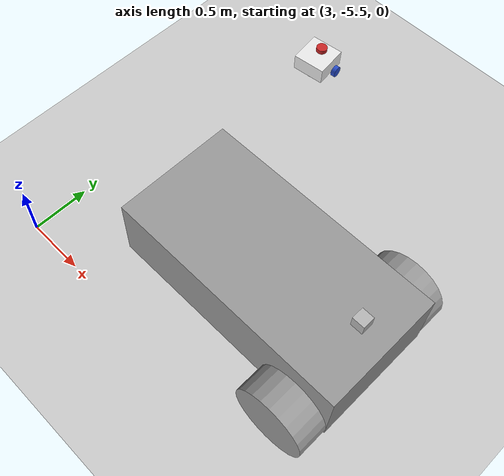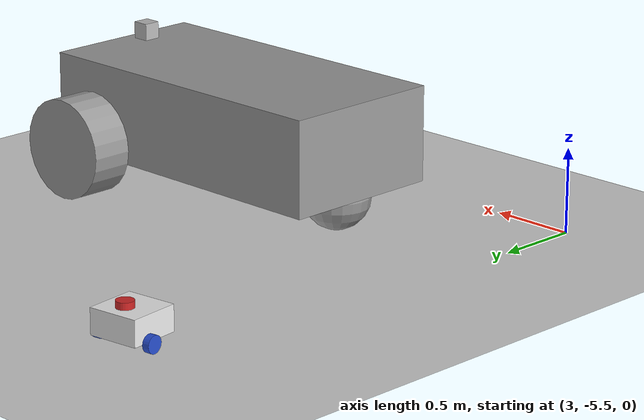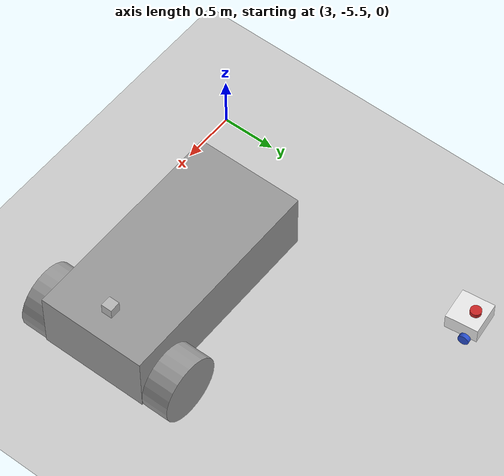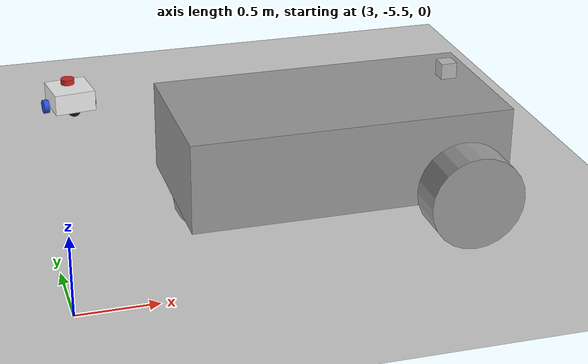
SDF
<sdf version="1.7">
 <world name="default">
  <light name="sun" type="directional">
   <pose>0 0 10 0 -0 0</pose>
   <diffuse>0.8 0.8 0.8 1</diffuse>
   <specular>0.2 0.2 0.2 1</specular>
   <attenuation>
    <range>1000</range>
    <constant>0.9</constant>
    <linear>0.01</linear>
    <quadratic>0.001</quadratic>
   </attenuation>
   <direction>-0.5 0.1 -0.9</direction>
   <spot><inner_angle>0</inner_angle><outer_angle>0</outer_angle><falloff>0</falloff></spot>
  </light>
  <model name="ground_plane">
   <static>1</static>
   <link name="link">
    <collision name="collision">
     <geometry><plane><normal>0 0 1</normal><size>100 100</size></plane></geometry>
     <surface>
      <contact><collide_bitmask>65535</collide_bitmask></contact>
      <friction><ode><mu>100</mu><mu2>50</mu2></ode></friction>
     </surface>
    </collision>
    <visual name="visual">
     <cast_shadows>0</cast_shadows>
     <geometry><plane><normal>0 0 1</normal><size>100 100</size></plane></geometry>
     <material>
      <script><uri>file://media/materials/scripts/gazebo.material</uri><name>Gazebo/Grey</name></script>
     </material>
    </visual>
   </link>
  </model>
  <gravity>0 0 -9.8</gravity>
  <magnetic_field>6e-06 2.3e-05 -4.2e-05</magnetic_field>
  <atmosphere type="adiabatic"/>
  <physics type="ode">
   <max_step_size>0.001</max_step_size>
   <real_time_factor>1</real_time_factor>
   <real_time_update_rate>1000</real_time_update_rate>
  </physics>
  <scene><ambient>0.4 0.4 0.4 1</ambient><background>0.7 0.7 0.7 1</background><shadows>1</shadows></scene>
  <spherical_coordinates>
   <surface_model>EARTH_WGS84</surface_model>
   <latitude_deg>0</latitude_deg>
   <longitude_deg>0</longitude_deg>
   <elevation>0</elevation>
   <heading_deg>0</heading_deg>
  </spherical_coordinates>
  <model name="my_bot">
   <link name="base_link">
    <inertial>
     <pose>0.055714 0 0.078571 0 -0 0</pose>
     <mass>0.7</mass>
     <inertia>
      <ixx>0.0064169</ixx>
      <ixy>0</ixy>
      <ixz>0.00118929</ixz>
      <iyy>0.00745405</iyy>
      <iyz>0</iyz>
      <izz>0.00876214</izz>
     </inertia>
    </inertial>
    <collision name="base_link_fixed_joint_lump__chassis_collision">
     <pose>0.05 0 0.075 0 -0 0</pose>
     <geometry><box><size>0.3 0.3 0.15</size></box></geometry>
    </collision>
    <collision name="base_link_fixed_joint_lump__caster_wheel_collision_1">
     <pose>0.14 0 0 0 -0 0</pose>
     <geometry><sphere><radius>0.05</radius></sphere></geometry>
     <surface><friction><ode><mu>0.001</mu><mu2>0.002</mu2></ode></friction></surface>
    </collision>
    <collision name="base_link_fixed_joint_lump__laser_frame_collision_2">
     <pose>0 0 0.175 0 -0 0</pose>
     <geometry><cylinder><length>0.04</length><radius>0.05</radius></cylinder></geometry>
    </collision>
    <visual name="base_link_fixed_joint_lump__chassis_visual">
     <pose>0.05 0 0.075 0 -0 0</pose>
     <geometry><box><size>0.3 0.3 0.15</size></box></geometry>
     <material>
      <script><name>Gazebo/White</name><uri>file://media/materials/scripts/gazebo.material</uri></script>
     </material>
    </visual>
    <visual name="base_link_fixed_joint_lump__caster_wheel_visual_1">
     <pose>0.14 0 0 0 -0 0</pose>
     <geometry><sphere><radius>0.05</radius></sphere></geometry>
     <material>
      <script><name>Gazebo/Black</name><uri>file://media/materials/scripts/gazebo.material</uri></script>
     </material>
    </visual>
    <visual name="base_link_fixed_joint_lump__laser_frame_visual_2">
     <pose>0 0 0.175 0 -0 0</pose>
     <geometry><cylinder><length>0.04</length><radius>0.05</radius></cylinder></geometry>
     <material>
      <script><name>Gazebo/Red</name><uri>file://media/materials/scripts/gazebo.material</uri></script>
     </material>
    </visual>
    <sensor name="laser" type="ray">
     <visualize>1</visualize>
     <update_rate>10</update_rate>
     <ray>
      <scan>
       <horizontal>
        <samples>360</samples>
        <min_angle>-3.14</min_angle>
        <max_angle>3.14</max_angle>
        <resolution>1</resolution>
       </horizontal>
       <vertical><samples>1</samples><min_angle>0</min_angle><max_angle>0</max_angle></vertical>
      </scan>
      <range><min>0.3</min><max>12</max></range>
     </ray>
     <plugin name="laser_controller" filename="libgazebo_ros_ray_sensor.so">
      <ros><argument>~/out:=scan</argument></ros>
      <output_type>sensor_msgs/LaserScan</output_type>
      <frame_name>laser_frame</frame_name>
     </plugin>
     <pose>0 0 0.175 0 -0 0</pose>
    </sensor>
   </link>
   <joint name="left_wheel_joint" type="revolute">
    <pose relative_to="base_link">0 0.175 0 -1.5708 0 0</pose>
    <parent>base_link</parent>
    <child>left_wheel</child>
    <axis>
     <xyz>0 0 1</xyz>
     <limit><lower>-1e+16</lower><upper>1e+16</upper></limit>
     <dynamics><spring_reference>0</spring_reference><spring_stiffness>0</spring_stiffness></dynamics>
    </axis>
   </joint>
   <link name="left_wheel">
    <pose relative_to="left_wheel_joint">0 0 0 0 -0 0</pose>
    <inertial>
     <mass>0.1</mass>
     <inertia>
      <ixx>7.58333e-05</ixx>
      <ixy>0</ixy>
      <ixz>0</ixz>
      <iyy>7.58333e-05</iyy>
      <iyz>0</iyz>
      <izz>0.000125</izz>
     </inertia>
    </inertial>
    <collision name="left_wheel_collision">
     <geometry><cylinder><length>0.04</length><radius>0.05</radius></cylinder></geometry>
    </collision>
    <visual name="left_wheel_visual">
     <geometry><cylinder><length>0.04</length><radius>0.05</radius></cylinder></geometry>
     <material>
      <script><name>Gazebo/Blue</name><uri>file://media/materials/scripts/gazebo.material</uri></script>
     </material>
    </visual>
   </link>
   <joint name="right_wheel_joint" type="revolute">
    <pose relative_to="base_link">0 -0.175 0 1.5708 -0 0</pose>
    <parent>base_link</parent>
    <child>right_wheel</child>
    <axis>
     <xyz>0 0 -1</xyz>
     <limit><lower>-1e+16</lower><upper>1e+16</upper></limit>
     <dynamics><spring_reference>0</spring_reference><spring_stiffness>0</spring_stiffness></dynamics>
    </axis>
   </joint>
   <link name="right_wheel">
    <pose relative_to="right_wheel_joint">0 0 0 0 -0 0</pose>
    <inertial>
     <mass>0.1</mass>
     <inertia>
      <ixx>7.58333e-05</ixx>
      <ixy>0</ixy>
      <ixz>0</ixz>
      <iyy>7.58333e-05</iyy>
      <iyz>0</iyz>
      <izz>0.000125</izz>
     </inertia>
    </inertial>
    <collision name="right_wheel_collision">
     <geometry><cylinder><length>0.04</length><radius>0.05</radius></cylinder></geometry>
    </collision>
    <visual name="right_wheel_visual">
     <geometry><cylinder><length>0.04</length><radius>0.05</radius></cylinder></geometry>
     <material>
      <script><name>Gazebo/Blue</name><uri>file://media/materials/scripts/gazebo.material</uri></script>
     </material>
    </visual>
   </link>
   <static>0</static>
   <plugin name="diff_drive" filename="libgazebo_ros_diff_drive.so">
    <left_joint>left_wheel_joint</left_joint>
    <right_joint>right_wheel_joint</right_joint>
    <wheel_separation>0.35</wheel_separation>
    <wheel_diameter>0.1</wheel_diameter>
    <max_wheel_torque>200</max_wheel_torque>
    <max_wheel_acceleration>10.0</max_wheel_acceleration>
    <odometry_frame>odom</odometry_frame>
    <robot_base_frame>base_link</robot_base_frame>
    <publish_odom>1</publish_odom>
    <publish_odom_tf>1</publish_odom_tf>
    <publish_wheel_tf>1</publish_wheel_tf>
   </plugin>
   <pose>3.43135 -2.56478 0.049998 -1.9e-05 -1.6e-05 -1.44992</pose>
  </model>
  <model name="follower_vehicle">
   <pose>4.92508 -4.63043 0.325004 -0 -5e-06 0.002014</pose>
   <link name="chassis">
    <pose>-0.151427 -0 0.175 0 -0 0</pose>
    <inertial>
     <mass>1.14395</mass>
     <inertia>
      <ixx>0.126164</ixx>
      <ixy>0</ixy>
      <ixz>0</ixz>
      <iyy>0.416519</iyy>
      <iyz>0</iyz>
      <izz>0.481014</izz>
     </inertia>
    </inertial>
    <visual name="visual">
     <geometry><box><size>2.01142 1 0.568726</size></box></geometry>
     <material>
      <script><uri>file://media/materials/scripts/gazebo.material</uri><name>Gazebo/Grey</name></script>
     </material>
    </visual>
    <collision name="collision">
     <geometry><box><size>2.01142 1 0.568726</size></box></geometry>
     <surface>
      <friction><ode><mu>1</mu><mu2>1</mu2><fdir1>0 0 0</fdir1><slip1>0</slip1><slip2>0</slip2></ode></friction>
      <bounce><restitution_coefficient>0</restitution_coefficient><threshold>1e+06</threshold></bounce>
      <contact>
       <collide_without_contact>0</collide_without_contact>
       <collide_without_contact_bitmask>1</collide_without_contact_bitmask>
       <collide_bitmask>1</collide_bitmask>
       <ode>
        <soft_cfm>0</soft_cfm>
        <soft_erp>0.2</soft_erp>
        <kp>1e+13</kp>
        <kd>1</kd>
        <max_vel>0.01</max_vel>
        <min_depth>0</min_depth>
       </ode>
      </contact>
     </surface>
    </collision>
   </link>
   <link name="wheel_1">
    <pose>0.554283 0.625029 -0.025 1.5707 -0 0</pose>
    <inertial>
     <mass>2</mass>
     <inertia><ixx>0.145833</ixx><ixy>0</ixy><ixz>0</ixz><iyy>0.145833</iyy><iyz>0</iyz><izz>0.125</izz></inertia>
    </inertial>
    <visual name="visual">
     <geometry><cylinder><radius>0.3</radius><length>0.25</length></cylinder></geometry>
     <material>
      <script><uri>file://media/materials/scripts/gazebo.material</uri><name>Gazebo/Grey</name></script>
     </material>
    </visual>
    <collision name="collision">
     <geometry><cylinder><radius>0.3</radius><length>0.25</length></cylinder></geometry>
     <surface>
      <friction><ode><mu>1</mu><mu2>1</mu2><fdir1>0 0 0</fdir1><slip1>0</slip1><slip2>0</slip2></ode></friction>
      <bounce><restitution_coefficient>0</restitution_coefficient><threshold>1e+06</threshold></bounce>
      <contact>
       <collide_without_contact>0</collide_without_contact>
       <collide_without_contact_bitmask>1</collide_without_contact_bitmask>
       <collide_bitmask>1</collide_bitmask>
       <ode>
        <soft_cfm>0</soft_cfm>
        <soft_erp>0.2</soft_erp>
        <kp>1e+13</kp>
        <kd>1</kd>
        <max_vel>0.01</max_vel>
        <min_depth>0</min_depth>
       </ode>
      </contact>
     </surface>
    </collision>
   </link>
   <link name="wheel_2">
    <pose>0.554282 -0.625029 -0.025 1.5707 -0 0</pose>
    <inertial>
     <mass>2</mass>
     <inertia><ixx>0.145833</ixx><ixy>0</ixy><ixz>0</ixz><iyy>0.145833</iyy><iyz>0</iyz><izz>0.125</izz></inertia>
    </inertial>
    <visual name="visual">
     <geometry><cylinder><radius>0.3</radius><length>0.25</length></cylinder></geometry>
     <material>
      <script><uri>file://media/materials/scripts/gazebo.material</uri><name>Gazebo/Grey</name></script>
     </material>
    </visual>
    <collision name="collision">
     <geometry><cylinder><radius>0.3</radius><length>0.25</length></cylinder></geometry>
     <surface>
      <friction><ode><mu>1</mu><mu2>1</mu2><fdir1>0 0 0</fdir1><slip1>0</slip1><slip2>0</slip2></ode></friction>
      <bounce><restitution_coefficient>0</restitution_coefficient><threshold>1e+06</threshold></bounce>
      <contact>
       <collide_without_contact>0</collide_without_contact>
       <collide_without_contact_bitmask>1</collide_without_contact_bitmask>
       <collide_bitmask>1</collide_bitmask>
       <ode>
        <soft_cfm>0</soft_cfm>
        <soft_erp>0.2</soft_erp>
        <kp>1e+13</kp>
        <kd>1</kd>
        <max_vel>0.01</max_vel>
        <min_depth>0</min_depth>
       </ode>
      </contact>
     </surface>
    </collision>
   </link>
   <link name="caster">
    <pose>-0.957138 -0 -0.125 0 -0 0</pose>
    <inertial>
     <mass>1</mass>
     <inertia><ixx>0.1</ixx><ixy>0</ixy><ixz>0</ixz><iyy>0.1</iyy><iyz>0</iyz><izz>0.1</izz></inertia>
    </inertial>
    <visual name="visual">
     <geometry><sphere><radius>0.2</radius></sphere></geometry>
     <material>
      <script><uri>file://media/materials/scripts/gazebo.material</uri><name>Gazebo/Grey</name></script>
     </material>
    </visual>
    <collision name="collision">
     <geometry><sphere><radius>0.2</radius></sphere></geometry>
     <surface>
      <friction><ode><mu>1</mu><mu2>1</mu2><fdir1>0 0 0</fdir1><slip1>0</slip1><slip2>0</slip2></ode></friction>
      <bounce><restitution_coefficient>0</restitution_coefficient><threshold>1e+06</threshold></bounce>
      <contact>
       <collide_without_contact>0</collide_without_contact>
       <collide_without_contact_bitmask>1</collide_without_contact_bitmask>
       <collide_bitmask>1</collide_bitmask>
       <ode>
        <soft_cfm>0</soft_cfm>
        <soft_erp>0.2</soft_erp>
        <kp>1e+13</kp>
        <kd>1</kd>
        <max_vel>0.01</max_vel>
        <min_depth>0</min_depth>
       </ode>
      </contact>
     </surface>
    </collision>
   </link>
   <model name="depth_camera">
    <link name="link">
     <pose>0.05 0.05 0.05 0 -0 0</pose>
     <inertial>
      <mass>0.1</mass>
      <inertia>
       <ixx>0.000166667</ixx>
       <iyy>0.000166667</iyy>
       <izz>0.000166667</izz>
       <ixy>0</ixy>
       <ixz>0</ixz>
       <iyz>0</iyz>
      </inertia>
     </inertial>
     <collision name="collision"><geometry><box><size>0.1 0.1 0.1</size></box></geometry></collision>
     <visual name="visual"><geometry><box><size>0.1 0.1 0.1</size></box></geometry></visual>
     <sensor name="camera" type="depth">
      <camera name="depth">
       <horizontal_fov>1.047</horizontal_fov>
       <image><width>320</width><height>240</height></image>
       <clip><near>0.1</near><far>100</far></clip>
      </camera>
      <always_on>1</always_on>
      <update_rate>30</update_rate>
      <visualize>1</visualize>
     </sensor>
    </link>
    <pose>0.569632 -0.03223 0.502056 0 -0 0</pose>
   </model>
   <joint name="chassis_wheel_1_revolute" type="revolute">
    <parent>chassis</parent>
    <child>wheel_1</child>
    <axis>
     <xyz>0 0 1</xyz>
     <limit>
      <lower>-1.79769e+308</lower>
      <upper>1.79769e+308</upper>
      <effort>-1</effort>
      <velocity>-1</velocity>
     </limit>
     <dynamics>
      <spring_reference>0</spring_reference>
      <spring_stiffness>0</spring_stiffness>
      <damping>0</damping>
      <friction>0</friction>
     </dynamics>
    </axis>
    <physics>
     <ode><limit><cfm>0</cfm><erp>0.2</erp></limit><suspension><cfm>0</cfm><erp>0.2</erp></suspension></ode>
    </physics>
   </joint>
   <joint name="chassis_wheel_2_revolute" type="revolute">
    <parent>chassis</parent>
    <child>wheel_2</child>
    <axis>
     <xyz>0 0 1</xyz>
     <limit>
      <lower>-1.79769e+308</lower>
      <upper>1.79769e+308</upper>
      <effort>-1</effort>
      <velocity>-1</velocity>
     </limit>
     <dynamics>
      <spring_reference>0</spring_reference>
      <spring_stiffness>0</spring_stiffness>
      <damping>0</damping>
      <friction>0</friction>
     </dynamics>
    </axis>
    <physics>
     <ode><limit><cfm>0</cfm><erp>0.2</erp></limit><suspension><cfm>0</cfm><erp>0.2</erp></suspension></ode>
    </physics>
   </joint>
   <joint name="chassis_caster_ball" type="ball">
    <parent>chassis</parent>
    <child>caster</child>
    <physics>
     <ode><limit><cfm>0</cfm><erp>0.2</erp></limit><suspension><cfm>0</cfm><erp>0.2</erp></suspension></ode>
    </physics>
   </joint>
   <joint name="chassis_depth_camera_link_fixed" type="fixed">
    <parent>chassis</parent>
    <child>depth_camera::link</child>
    <physics>
     <ode><limit><cfm>0</cfm><erp>0.2</erp></limit><suspension><cfm>0</cfm><erp>0.2</erp></suspension></ode>
    </physics>
   </joint>
   <static>0</static>
   <plugin name="follower" filename="libFollowerPlugin.so"/>
  </model>
 </world>
</sdf>
